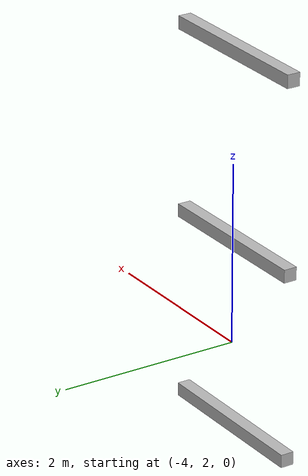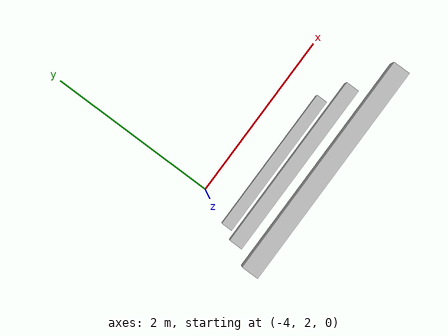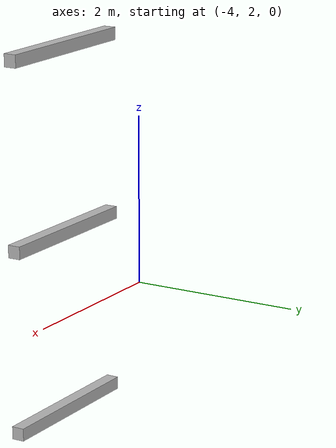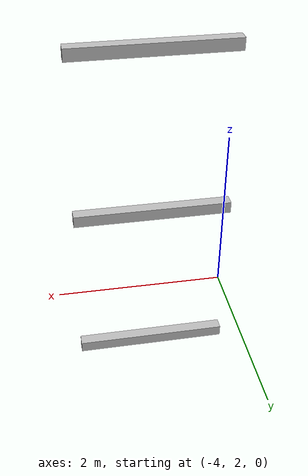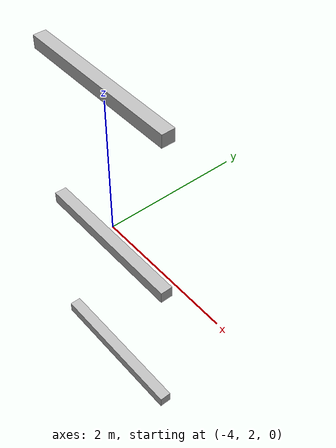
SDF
<sdf version="1.7">
 <world name="default">
  <model name="orthogonal_747_2.000.15_TS">
   <static>1</static>
   <link name="x_link_0_3_1">
    <inertial>
     <mass>1</mass>
     <inertia>
      <ixx>0.166667</ixx>
      <ixy>0</ixy>
      <ixz>0</ixz>
      <iyy>0.166667</iyy>
      <iyz>0</iyz>
      <izz>0.166667</izz>
     </inertia>
    </inertial>
    <pose>3.225 6.45 1.075 0 -0 0</pose>
    <visual name="visual_0">
     <laser_retro>505</laser_retro>
     <geometry><box><size>2 1e-06 0.15</size></box></geometry>
     <material>
      <script><name>Gazebo/Grey</name><uri>file://media/materials/scripts/gazebo.material</uri></script>
      <shader type="pixel"><normal_map>__default__</normal_map></shader>
      <ambient>0.678 0.498 0.659 1</ambient>
      <diffuse>0.7 0.7 0.7 1</diffuse>
      <specular>0.01 0.01 0.01 1</specular>
      <emissive>0 0 0 1</emissive>
     </material>
     <pose>0 -0.075 0 0 -0 0</pose>
     <transparency>1</transparency>
    </visual>
    <visual name="visual_1">
     <laser_retro>506</laser_retro>
     <geometry><box><size>2 1e-06 0.15</size></box></geometry>
     <material>
      <script><name>Gazebo/Grey</name><uri>file://media/materials/scripts/gazebo.material</uri></script>
      <shader type="pixel"><normal_map>__default__</normal_map></shader>
      <ambient>0.447 0.624 0.812 1</ambient>
      <diffuse>0.7 0.7 0.7 1</diffuse>
      <specular>0.01 0.01 0.01 1</specular>
      <emissive>0 0 0 1</emissive>
     </material>
     <pose>0 0.075 0 0 -0 0</pose>
     <transparency>1</transparency>
    </visual>
    <visual name="visual_2">
     <laser_retro>507</laser_retro>
     <geometry><box><size>2 0.15 1e-06</size></box></geometry>
     <material>
      <script><name>Gazebo/Grey</name><uri>file://media/materials/scripts/gazebo.material</uri></script>
      <shader type="pixel"><normal_map>__default__</normal_map></shader>
      <ambient>0.988 0.686 0.243 1</ambient>
      <diffuse>0.7 0.7 0.7 1</diffuse>
      <specular>0.01 0.01 0.01 1</specular>
      <emissive>0 0 0 1</emissive>
     </material>
     <pose>0 0 -0.075 0 -0 0</pose>
     <transparency>1</transparency>
    </visual>
    <visual name="visual_3">
     <laser_retro>508</laser_retro>
     <geometry><box><size>1e-06 0.15 0.15</size></box></geometry>
     <material>
      <script><name>Gazebo/Grey</name><uri>file://media/materials/scripts/gazebo.material</uri></script>
      <shader type="pixel"><normal_map>__default__</normal_map></shader>
      <ambient>0.988 0.914 0.31 1</ambient>
      <diffuse>0.7 0.7 0.7 1</diffuse>
      <specular>0.01 0.01 0.01 1</specular>
      <emissive>0 0 0 1</emissive>
     </material>
     <pose>1 0 0 0 -0 0</pose>
     <transparency>1</transparency>
    </visual>
    <visual name="visual_4">
     <laser_retro>509</laser_retro>
     <geometry><box><size>2 0.15 1e-06</size></box></geometry>
     <material>
      <script><name>Gazebo/Grey</name><uri>file://media/materials/scripts/gazebo.material</uri></script>
      <shader type="pixel"><normal_map>__default__</normal_map></shader>
      <ambient>0.937 0.161 0.161 1</ambient>
      <diffuse>0.7 0.7 0.7 1</diffuse>
      <specular>0.01 0.01 0.01 1</specular>
      <emissive>0 0 0 1</emissive>
     </material>
     <pose>0 0 0.075 0 -0 0</pose>
     <transparency>1</transparency>
    </visual>
    <visual name="visual_5">
     <laser_retro>510</laser_retro>
     <geometry><box><size>1e-06 0.15 0.15</size></box></geometry>
     <material>
      <script><name>Gazebo/Grey</name><uri>file://media/materials/scripts/gazebo.material</uri></script>
      <shader type="pixel"><normal_map>__default__</normal_map></shader>
      <ambient>0.541 0.886 0.204 1</ambient>
      <diffuse>0.7 0.7 0.7 1</diffuse>
      <specular>0.01 0.01 0.01 1</specular>
      <emissive>0 0 0 1</emissive>
     </material>
     <pose>-1 0 0 0 -0 0</pose>
     <transparency>1</transparency>
    </visual>
    <visual name="visual_texture">
     <geometry><box><size>1.9998 0.149985 0.149985</size></box></geometry>
     <material>
      <script>
       <uri>model://BASE_MODELS/simple_block_v2_textured/materials/scripts</uri>
       <uri>model://BASE_MODELS/simple_block_v2_textured/materials/textures</uri>
       <name>metal</name>
      </script>
     </material>
     <laser_retro>511</laser_retro>
    </visual>
    <collision name="collision">
     <geometry><box><size>2 0.15 0.15</size></box></geometry>
     <surface>
      <friction>
       <ode><mu>1</mu><mu2>1</mu2><fdir1>0 0 0</fdir1><slip1>0</slip1><slip2>0</slip2></ode>
       <torsional>
        <coefficient>1</coefficient>
        <patch_radius>0</patch_radius>
        <surface_radius>0</surface_radius>
        <use_patch_radius>1</use_patch_radius>
        <ode><slip>0</slip></ode>
       </torsional>
      </friction>
      <bounce><restitution_coefficient>0</restitution_coefficient><threshold>1e+06</threshold></bounce>
      <contact>
       <collide_without_contact>0</collide_without_contact>
       <collide_without_contact_bitmask>1</collide_without_contact_bitmask>
       <collide_bitmask>1</collide_bitmask>
       <ode>
        <soft_cfm>0</soft_cfm>
        <soft_erp>0.2</soft_erp>
        <kp>1e+13</kp>
        <kd>1</kd>
        <max_vel>0.01</max_vel>
        <min_depth>0</min_depth>
       </ode>
       <bullet>
        <split_impulse>1</split_impulse>
        <split_impulse_penetration_threshold>-0.01</split_impulse_penetration_threshold>
        <soft_cfm>0</soft_cfm>
        <soft_erp>0.2</soft_erp>
        <kp>1e+13</kp>
        <kd>1</kd>
       </bullet>
      </contact>
     </surface>
    </collision>
   </link>
   <link name="x_link_1_3_1">
    <inertial>
     <mass>1</mass>
     <inertia>
      <ixx>0.166667</ixx>
      <ixy>0</ixy>
      <ixz>0</ixz>
      <iyy>0.166667</iyy>
      <iyz>0</iyz>
      <izz>0.166667</izz>
     </inertia>
    </inertial>
    <pose>3.225 6.45 3.225 0 -0 0</pose>
    <visual name="visual_0">
     <laser_retro>1345</laser_retro>
     <geometry><box><size>2 1e-06 0.15</size></box></geometry>
     <material>
      <script><name>Gazebo/Grey</name><uri>file://media/materials/scripts/gazebo.material</uri></script>
      <shader type="pixel"><normal_map>__default__</normal_map></shader>
      <ambient>0.678 0.498 0.659 1</ambient>
      <diffuse>0.7 0.7 0.7 1</diffuse>
      <specular>0.01 0.01 0.01 1</specular>
      <emissive>0 0 0 1</emissive>
     </material>
     <pose>0 -0.075 0 0 -0 0</pose>
     <transparency>1</transparency>
    </visual>
    <visual name="visual_1">
     <laser_retro>1346</laser_retro>
     <geometry><box><size>2 1e-06 0.15</size></box></geometry>
     <material>
      <script><name>Gazebo/Grey</name><uri>file://media/materials/scripts/gazebo.material</uri></script>
      <shader type="pixel"><normal_map>__default__</normal_map></shader>
      <ambient>0.447 0.624 0.812 1</ambient>
      <diffuse>0.7 0.7 0.7 1</diffuse>
      <specular>0.01 0.01 0.01 1</specular>
      <emissive>0 0 0 1</emissive>
     </material>
     <pose>0 0.075 0 0 -0 0</pose>
     <transparency>1</transparency>
    </visual>
    <visual name="visual_2">
     <laser_retro>1347</laser_retro>
     <geometry><box><size>2 0.15 1e-06</size></box></geometry>
     <material>
      <script><name>Gazebo/Grey</name><uri>file://media/materials/scripts/gazebo.material</uri></script>
      <shader type="pixel"><normal_map>__default__</normal_map></shader>
      <ambient>0.988 0.686 0.243 1</ambient>
      <diffuse>0.7 0.7 0.7 1</diffuse>
      <specular>0.01 0.01 0.01 1</specular>
      <emissive>0 0 0 1</emissive>
     </material>
     <pose>0 0 -0.075 0 -0 0</pose>
     <transparency>1</transparency>
    </visual>
    <visual name="visual_3">
     <laser_retro>1348</laser_retro>
     <geometry><box><size>1e-06 0.15 0.15</size></box></geometry>
     <material>
      <script><name>Gazebo/Grey</name><uri>file://media/materials/scripts/gazebo.material</uri></script>
      <shader type="pixel"><normal_map>__default__</normal_map></shader>
      <ambient>0.988 0.914 0.31 1</ambient>
      <diffuse>0.7 0.7 0.7 1</diffuse>
      <specular>0.01 0.01 0.01 1</specular>
      <emissive>0 0 0 1</emissive>
     </material>
     <pose>1 0 0 0 -0 0</pose>
     <transparency>1</transparency>
    </visual>
    <visual name="visual_4">
     <laser_retro>1349</laser_retro>
     <geometry><box><size>2 0.15 1e-06</size></box></geometry>
     <material>
      <script><name>Gazebo/Grey</name><uri>file://media/materials/scripts/gazebo.material</uri></script>
      <shader type="pixel"><normal_map>__default__</normal_map></shader>
      <ambient>0.937 0.161 0.161 1</ambient>
      <diffuse>0.7 0.7 0.7 1</diffuse>
      <specular>0.01 0.01 0.01 1</specular>
      <emissive>0 0 0 1</emissive>
     </material>
     <pose>0 0 0.075 0 -0 0</pose>
     <transparency>1</transparency>
    </visual>
    <visual name="visual_5">
     <laser_retro>1350</laser_retro>
     <geometry><box><size>1e-06 0.15 0.15</size></box></geometry>
     <material>
      <script><name>Gazebo/Grey</name><uri>file://media/materials/scripts/gazebo.material</uri></script>
      <shader type="pixel"><normal_map>__default__</normal_map></shader>
      <ambient>0.541 0.886 0.204 1</ambient>
      <diffuse>0.7 0.7 0.7 1</diffuse>
      <specular>0.01 0.01 0.01 1</specular>
      <emissive>0 0 0 1</emissive>
     </material>
     <pose>-1 0 0 0 -0 0</pose>
     <transparency>1</transparency>
    </visual>
    <visual name="visual_texture">
     <geometry><box><size>1.9998 0.149985 0.149985</size></box></geometry>
     <material>
      <script>
       <uri>model://BASE_MODELS/simple_block_v2_textured/materials/scripts</uri>
       <uri>model://BASE_MODELS/simple_block_v2_textured/materials/textures</uri>
       <name>metal</name>
      </script>
     </material>
     <laser_retro>1351</laser_retro>
    </visual>
    <collision name="collision">
     <geometry><box><size>2 0.15 0.15</size></box></geometry>
     <surface>
      <friction>
       <ode><mu>1</mu><mu2>1</mu2><fdir1>0 0 0</fdir1><slip1>0</slip1><slip2>0</slip2></ode>
       <torsional>
        <coefficient>1</coefficient>
        <patch_radius>0</patch_radius>
        <surface_radius>0</surface_radius>
        <use_patch_radius>1</use_patch_radius>
        <ode><slip>0</slip></ode>
       </torsional>
      </friction>
      <bounce><restitution_coefficient>0</restitution_coefficient><threshold>1e+06</threshold></bounce>
      <contact>
       <collide_without_contact>0</collide_without_contact>
       <collide_without_contact_bitmask>1</collide_without_contact_bitmask>
       <collide_bitmask>1</collide_bitmask>
       <ode>
        <soft_cfm>0</soft_cfm>
        <soft_erp>0.2</soft_erp>
        <kp>1e+13</kp>
        <kd>1</kd>
        <max_vel>0.01</max_vel>
        <min_depth>0</min_depth>
       </ode>
       <bullet>
        <split_impulse>1</split_impulse>
        <split_impulse_penetration_threshold>-0.01</split_impulse_penetration_threshold>
        <soft_cfm>0</soft_cfm>
        <soft_erp>0.2</soft_erp>
        <kp>1e+13</kp>
        <kd>1</kd>
       </bullet>
      </contact>
     </surface>
    </collision>
   </link>
   <link name="x_link_2_3_1">
    <inertial>
     <mass>1</mass>
     <inertia>
      <ixx>0.166667</ixx>
      <ixy>0</ixy>
      <ixz>0</ixz>
      <iyy>0.166667</iyy>
      <iyz>0</iyz>
      <izz>0.166667</izz>
     </inertia>
    </inertial>
    <pose>3.225 6.45 5.375 0 -0 0</pose>
    <visual name="visual_0">
     <laser_retro>2248</laser_retro>
     <geometry><box><size>2 1e-06 0.15</size></box></geometry>
     <material>
      <script><name>Gazebo/Grey</name><uri>file://media/materials/scripts/gazebo.material</uri></script>
      <shader type="pixel"><normal_map>__default__</normal_map></shader>
      <ambient>0.678 0.498 0.659 1</ambient>
      <diffuse>0.7 0.7 0.7 1</diffuse>
      <specular>0.01 0.01 0.01 1</specular>
      <emissive>0 0 0 1</emissive>
     </material>
     <pose>0 -0.075 0 0 -0 0</pose>
     <transparency>1</transparency>
    </visual>
    <visual name="visual_1">
     <laser_retro>2249</laser_retro>
     <geometry><box><size>2 1e-06 0.15</size></box></geometry>
     <material>
      <script><name>Gazebo/Grey</name><uri>file://media/materials/scripts/gazebo.material</uri></script>
      <shader type="pixel"><normal_map>__default__</normal_map></shader>
      <ambient>0.447 0.624 0.812 1</ambient>
      <diffuse>0.7 0.7 0.7 1</diffuse>
      <specular>0.01 0.01 0.01 1</specular>
      <emissive>0 0 0 1</emissive>
     </material>
     <pose>0 0.075 0 0 -0 0</pose>
     <transparency>1</transparency>
    </visual>
    <visual name="visual_2">
     <laser_retro>2250</laser_retro>
     <geometry><box><size>2 0.15 1e-06</size></box></geometry>
     <material>
      <script><name>Gazebo/Grey</name><uri>file://media/materials/scripts/gazebo.material</uri></script>
      <shader type="pixel"><normal_map>__default__</normal_map></shader>
      <ambient>0.988 0.686 0.243 1</ambient>
      <diffuse>0.7 0.7 0.7 1</diffuse>
      <specular>0.01 0.01 0.01 1</specular>
      <emissive>0 0 0 1</emissive>
     </material>
     <pose>0 0 -0.075 0 -0 0</pose>
     <transparency>1</transparency>
    </visual>
    <visual name="visual_3">
     <laser_retro>2251</laser_retro>
     <geometry><box><size>1e-06 0.15 0.15</size></box></geometry>
     <material>
      <script><name>Gazebo/Grey</name><uri>file://media/materials/scripts/gazebo.material</uri></script>
      <shader type="pixel"><normal_map>__default__</normal_map></shader>
      <ambient>0.988 0.914 0.31 1</ambient>
      <diffuse>0.7 0.7 0.7 1</diffuse>
      <specular>0.01 0.01 0.01 1</specular>
      <emissive>0 0 0 1</emissive>
     </material>
     <pose>1 0 0 0 -0 0</pose>
     <transparency>1</transparency>
    </visual>
    <visual name="visual_4">
     <laser_retro>2252</laser_retro>
     <geometry><box><size>2 0.15 1e-06</size></box></geometry>
     <material>
      <script><name>Gazebo/Grey</name><uri>file://media/materials/scripts/gazebo.material</uri></script>
      <shader type="pixel"><normal_map>__default__</normal_map></shader>
      <ambient>0.937 0.161 0.161 1</ambient>
      <diffuse>0.7 0.7 0.7 1</diffuse>
      <specular>0.01 0.01 0.01 1</specular>
      <emissive>0 0 0 1</emissive>
     </material>
     <pose>0 0 0.075 0 -0 0</pose>
     <transparency>1</transparency>
    </visual>
    <visual name="visual_5">
     <laser_retro>2253</laser_retro>
     <geometry><box><size>1e-06 0.15 0.15</size></box></geometry>
     <material>
      <script><name>Gazebo/Grey</name><uri>file://media/materials/scripts/gazebo.material</uri></script>
      <shader type="pixel"><normal_map>__default__</normal_map></shader>
      <ambient>0.541 0.886 0.204 1</ambient>
      <diffuse>0.7 0.7 0.7 1</diffuse>
      <specular>0.01 0.01 0.01 1</specular>
      <emissive>0 0 0 1</emissive>
     </material>
     <pose>-1 0 0 0 -0 0</pose>
     <transparency>1</transparency>
    </visual>
    <visual name="visual_texture">
     <geometry><box><size>1.9998 0.149985 0.149985</size></box></geometry>
     <material>
      <script>
       <uri>model://BASE_MODELS/simple_block_v2_textured/materials/scripts</uri>
       <uri>model://BASE_MODELS/simple_block_v2_textured/materials/textures</uri>
       <name>metal</name>
      </script>
     </material>
     <laser_retro>2254</laser_retro>
    </visual>
    <collision name="collision">
     <geometry><box><size>2 0.15 0.15</size></box></geometry>
     <surface>
      <friction>
       <ode><mu>1</mu><mu2>1</mu2><fdir1>0 0 0</fdir1><slip1>0</slip1><slip2>0</slip2></ode>
       <torsional>
        <coefficient>1</coefficient>
        <patch_radius>0</patch_radius>
        <surface_radius>0</surface_radius>
        <use_patch_radius>1</use_patch_radius>
        <ode><slip>0</slip></ode>
       </torsional>
      </friction>
      <bounce><restitution_coefficient>0</restitution_coefficient><threshold>1e+06</threshold></bounce>
      <contact>
       <collide_without_contact>0</collide_without_contact>
       <collide_without_contact_bitmask>1</collide_without_contact_bitmask>
       <collide_bitmask>1</collide_bitmask>
       <ode>
        <soft_cfm>0</soft_cfm>
        <soft_erp>0.2</soft_erp>
        <kp>1e+13</kp>
        <kd>1</kd>
        <max_vel>0.01</max_vel>
        <min_depth>0</min_depth>
       </ode>
       <bullet>
        <split_impulse>1</split_impulse>
        <split_impulse_penetration_threshold>-0.01</split_impulse_penetration_threshold>
        <soft_cfm>0</soft_cfm>
        <soft_erp>0.2</soft_erp>
        <kp>1e+13</kp>
        <kd>1</kd>
       </bullet>
      </contact>
     </surface>
    </collision>
   </link>
   <pose>-6.47624 -5 -2.5 0 -0 0</pose>
  </model>
 </world>
</sdf>
